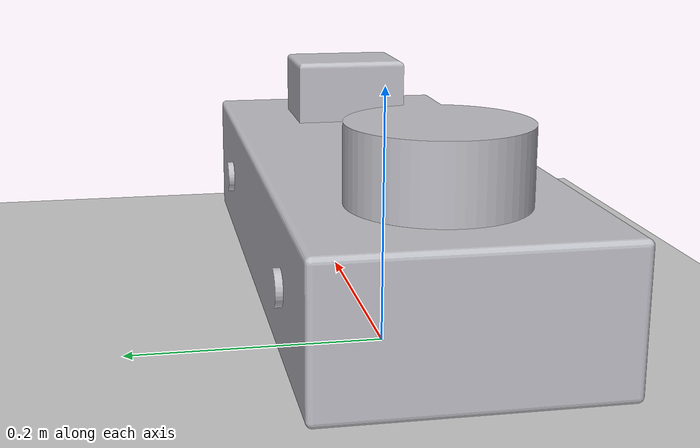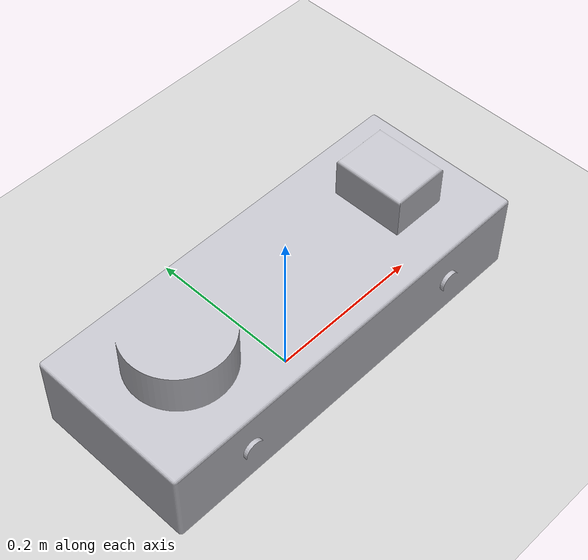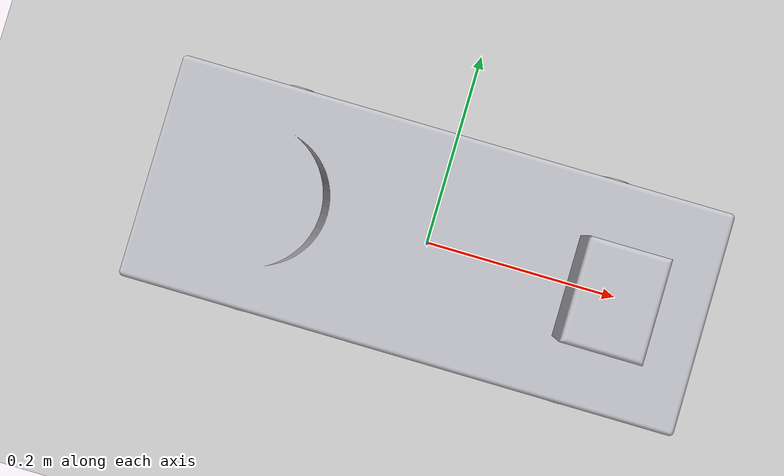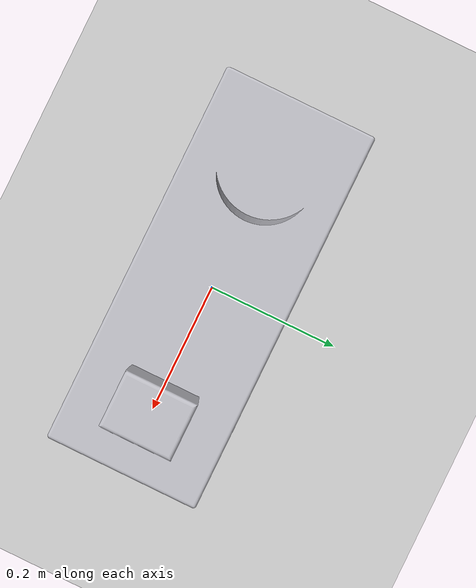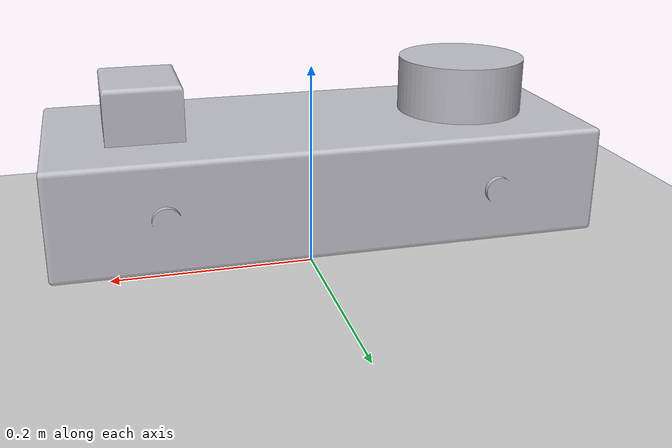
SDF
<sdf version="1.7">
 <world name="default">
  <light name="sun" type="directional">
   <pose>0 0 10 0 -0 0</pose>
   <diffuse>0.8 0.8 0.8 1</diffuse>
   <specular>0.2 0.2 0.2 1</specular>
   <attenuation>
    <range>1000</range>
    <constant>0.9</constant>
    <linear>0.01</linear>
    <quadratic>0.001</quadratic>
   </attenuation>
   <direction>-0.5 0.1 -0.9</direction>
   <spot><inner_angle>0</inner_angle><outer_angle>0</outer_angle><falloff>0</falloff></spot>
  </light>
  <model name="ground_plane">
   <static>1</static>
   <link name="link">
    <collision name="collision">
     <geometry><plane><normal>0 0 1</normal><size>100 100</size></plane></geometry>
     <surface>
      <contact><collide_bitmask>65535</collide_bitmask></contact>
      <friction><ode><mu>100</mu><mu2>50</mu2></ode></friction>
     </surface>
    </collision>
    <visual name="visual">
     <cast_shadows>0</cast_shadows>
     <geometry><plane><normal>0 0 1</normal><size>100 100</size></plane></geometry>
     <material>
      <script><uri>file://media/materials/scripts/gazebo.material</uri><name>Gazebo/Grey</name></script>
     </material>
    </visual>
   </link>
  </model>
  <gravity>0 0 -9.8</gravity>
  <magnetic_field>6e-06 2.3e-05 -4.2e-05</magnetic_field>
  <atmosphere type="adiabatic"/>
  <physics type="ode">
   <max_step_size>0.001</max_step_size>
   <real_time_factor>1</real_time_factor>
   <real_time_update_rate>1000</real_time_update_rate>
  </physics>
  <scene><ambient>0.4 0.4 0.4 1</ambient><background>0.7 0.7 0.7 1</background><shadows>1</shadows></scene>
  <spherical_coordinates>
   <surface_model>EARTH_WGS84</surface_model>
   <latitude_deg>0</latitude_deg>
   <longitude_deg>0</longitude_deg>
   <elevation>0</elevation>
   <heading_deg>0</heading_deg>
  </spherical_coordinates>
  <model name="hexa_pipe_line">
   <link name="base_link">
    <inertial>
     <pose>1.63625 1.25 0.5 0 -0 0</pose>
     <mass>128.635</mass>
     <inertia><ixx>190.834</ixx><ixy>0</ixy><ixz>0</ixz><iyy>117.522</iyy><iyz>0</iyz><izz>273.919</izz></inertia>
    </inertial>
    <collision name="base_link_collision">
     <geometry>
      <mesh>
       <scale>0.001 0.001 0.001</scale>
       <uri>/home/ajetayrus/casestudy_ws/src/hexa_pipe_line_description/meshes/base_link.stl</uri>
      </mesh>
     </geometry>
     <surface><friction><ode><mu>0.2</mu><mu2>0.2</mu2></ode></friction></surface>
    </collision>
    <visual name="base_link_visual">
     <geometry>
      <mesh>
       <scale>0.001 0.001 0.001</scale>
       <uri>/home/ajetayrus/casestudy_ws/src/hexa_pipe_line_description/meshes/base_link.stl</uri>
      </mesh>
     </geometry>
     <material>
      <script><name>Gazebo/Silver</name><uri>file://media/materials/scripts/gazebo.material</uri></script>
     </material>
    </visual>
    <self_collide>1</self_collide>
   </link>
   <static>0</static>
   <plugin name="control" filename="libgazebo_ros_control.so"><robotNamespace>/</robotNamespace></plugin>
  </model>
 </world>
</sdf>
